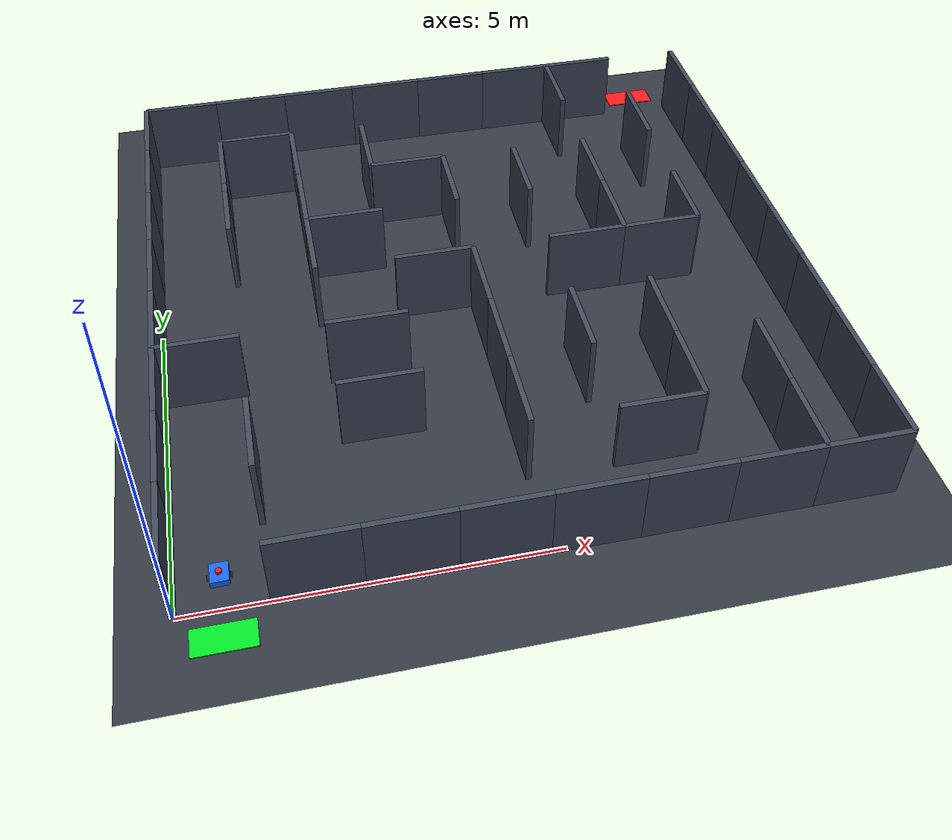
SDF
<?xml version="1.0"?>
<sdf version="1.9">
  <world name="maze">
    <physics name="default_physics" type="ode">
      <max_step_size>0.001</max_step_size>
      <real_time_factor>1.0</real_time_factor>
      <real_time_update_rate>1000</real_time_update_rate>
    </physics>

    <plugin filename="gz-sim-physics-system" name="gz::sim::systems::Physics"/>
    <plugin filename="gz-sim-user-commands-system" name="gz::sim::systems::UserCommands"/>
    <plugin filename="gz-sim-scene-broadcaster-system" name="gz::sim::systems::SceneBroadcaster"/>
    <plugin filename="gz-sim-sensors-system" name="gz::sim::systems::Sensors">
      <render_engine>ogre2</render_engine>
    </plugin>

    <scene>
      <ambient>0.3 0.3 0.35 1</ambient>
      <background>0.05 0.06 0.1 1</background>
      <grid>false</grid>
      <shadows>true</shadows>
    </scene>

    <light type="directional" name="sun">
      <cast_shadows>true</cast_shadows>
      <pose>0 0 15 0 0 0</pose>
      <diffuse>0.95 0.95 1.0 1</diffuse>
      <specular>0.3 0.3 0.4 1</specular>
      <direction>-0.4 0.5 -1</direction>
      <attenuation>
        <range>50</range>
        <constant>0.9</constant>
        <linear>0.01</linear>
        <quadratic>0.001</quadratic>
      </attenuation>
    </light>

    <light type="point" name="goal_glow">
      <pose>9.0 10.0 1.5 0 0 0</pose>
      <diffuse>1.0 0.2 0.2 1</diffuse>
      <specular>0.8 0.1 0.1 1</specular>
      <attenuation>
        <range>5</range>
        <constant>0.4</constant>
        <linear>0.5</linear>
        <quadratic>0.2</quadratic>
      </attenuation>
    </light>

    <model name="ground">
      <static>true</static>
      <link name="link">
        <collision name="c"><geometry><plane><normal>0 0 1</normal><size>13.6 13.6</size></plane></geometry></collision>
        <visual name="v">
          <geometry><plane><normal>0 0 1</normal><size>13.6 13.6</size></plane></geometry>
          <material>
            <ambient>0.12 0.13 0.16 1</ambient>
            <diffuse>0.2 0.22 0.26 1</diffuse>
            <specular>0.1 0.1 0.12 1</specular>
          </material>
        </visual>
      </link>
    </model>

    <model name="start_marker">
      <static>true</static>
      <link name="link">
        <visual name="v">
          <geometry><box><size>0.84 0.4 0.01</size></box></geometry>
          <material>
            <ambient>0.0 0.6 0.1 1</ambient>
            <diffuse>0.0 0.9 0.15 1</diffuse>
            <emissive>0.0 0.4 0.05 1</emissive>
          </material>
        </visual>
      </link>
      <pose>0.6 -0.4 0.005 0 0 0</pose>
    </model>
    <model name="goal_marker">
      <static>true</static>
      <link name="link">
        <visual name="v">
          <geometry><box><size>0.84 0.4 0.01</size></box></geometry>
          <material>
            <ambient>0.7 0.05 0.05 1</ambient>
            <diffuse>1.0 0.1 0.1 1</diffuse>
            <emissive>0.5 0.0 0.0 1</emissive>
          </material>
        </visual>
      </link>
      <pose>9.0 10.0 0.005 0 0 0</pose>
    </model>

    <model name="wall_0">
      <static>true</static>
      <link name="link">
        <collision name="c">
          <geometry><box><size>1.2 0.08 1.2</size></box></geometry>
        </collision>
        <visual name="v">
          <geometry><box><size>1.2 0.08 1.2</size></box></geometry>
          <material>
            <ambient>0.15 0.15 0.2 1</ambient>
            <diffuse>0.25 0.28 0.35 1</diffuse>
            <specular>0.4 0.4 0.5 1</specular>
            <emissive>0.02 0.02 0.04 1</emissive>
          </material>
        </visual>
      </link>
      <pose>6.6 4.8 0.6 0 0 0</pose>
    </model>
    <model name="wall_1">
      <static>true</static>
      <link name="link">
        <collision name="c">
          <geometry><box><size>0.08 1.2 1.2</size></box></geometry>
        </collision>
        <visual name="v">
          <geometry><box><size>0.08 1.2 1.2</size></box></geometry>
          <material>
            <ambient>0.15 0.15 0.2 1</ambient>
            <diffuse>0.25 0.28 0.35 1</diffuse>
            <specular>0.4 0.4 0.5 1</specular>
            <emissive>0.02 0.02 0.04 1</emissive>
          </material>
        </visual>
      </link>
      <pose>4.8 1.7999999999999998 0.6 0 0 0</pose>
    </model>
    <model name="wall_2">
      <static>true</static>
      <link name="link">
        <collision name="c">
          <geometry><box><size>1.2 0.08 1.2</size></box></geometry>
        </collision>
        <visual name="v">
          <geometry><box><size>1.2 0.08 1.2</size></box></geometry>
          <material>
            <ambient>0.15 0.15 0.2 1</ambient>
            <diffuse>0.25 0.28 0.35 1</diffuse>
            <specular>0.4 0.4 0.5 1</specular>
            <emissive>0.02 0.02 0.04 1</emissive>
          </material>
        </visual>
      </link>
      <pose>0.6 3.5999999999999996 0.6 0 0 0</pose>
    </model>
    <model name="wall_3">
      <static>true</static>
      <link name="link">
        <collision name="c">
          <geometry><box><size>1.2 0.08 1.2</size></box></geometry>
        </collision>
        <visual name="v">
          <geometry><box><size>1.2 0.08 1.2</size></box></geometry>
          <material>
            <ambient>0.15 0.15 0.2 1</ambient>
            <diffuse>0.25 0.28 0.35 1</diffuse>
            <specular>0.4 0.4 0.5 1</specular>
            <emissive>0.02 0.02 0.04 1</emissive>
          </material>
        </visual>
      </link>
      <pose>3.0 6.0 0.6 0 0 0</pose>
    </model>
    <model name="wall_4">
      <static>true</static>
      <link name="link">
        <collision name="c">
          <geometry><box><size>0.08 1.2 1.2</size></box></geometry>
        </collision>
        <visual name="v">
          <geometry><box><size>0.08 1.2 1.2</size></box></geometry>
          <material>
            <ambient>0.15 0.15 0.2 1</ambient>
            <diffuse>0.25 0.28 0.35 1</diffuse>
            <specular>0.4 0.4 0.5 1</specular>
            <emissive>0.02 0.02 0.04 1</emissive>
          </material>
        </visual>
      </link>
      <pose>7.199999999999999 1.7999999999999998 0.6 0 0 0</pose>
    </model>
    <model name="wall_5">
      <static>true</static>
      <link name="link">
        <collision name="c">
          <geometry><box><size>0.08 1.2 1.2</size></box></geometry>
        </collision>
        <visual name="v">
          <geometry><box><size>0.08 1.2 1.2</size></box></geometry>
          <material>
            <ambient>0.15 0.15 0.2 1</ambient>
            <diffuse>0.25 0.28 0.35 1</diffuse>
            <specular>0.4 0.4 0.5 1</specular>
            <emissive>0.02 0.02 0.04 1</emissive>
          </material>
        </visual>
      </link>
      <pose>7.2 5.3999999999999995 0.6 0 0 0</pose>
    </model>
    <model name="wall_6">
      <static>true</static>
      <link name="link">
        <collision name="c">
          <geometry><box><size>0.08 1.2 1.2</size></box></geometry>
        </collision>
        <visual name="v">
          <geometry><box><size>0.08 1.2 1.2</size></box></geometry>
          <material>
            <ambient>0.15 0.15 0.2 1</ambient>
            <diffuse>0.25 0.28 0.35 1</diffuse>
            <specular>0.4 0.4 0.5 1</specular>
            <emissive>0.02 0.02 0.04 1</emissive>
          </material>
        </visual>
      </link>
      <pose>7.199999999999999 5.3999999999999995 0.6 0 0 0</pose>
    </model>
    <model name="wall_7">
      <static>true</static>
      <link name="link">
        <collision name="c">
          <geometry><box><size>0.08 1.2 1.2</size></box></geometry>
        </collision>
        <visual name="v">
          <geometry><box><size>0.08 1.2 1.2</size></box></geometry>
          <material>
            <ambient>0.15 0.15 0.2 1</ambient>
            <diffuse>0.25 0.28 0.35 1</diffuse>
            <specular>0.4 0.4 0.5 1</specular>
            <emissive>0.02 0.02 0.04 1</emissive>
          </material>
        </visual>
      </link>
      <pose>8.399999999999999 0.6 0.6 0 0 0</pose>
    </model>
    <model name="wall_8">
      <static>true</static>
      <link name="link">
        <collision name="c">
          <geometry><box><size>0.08 1.2 1.2</size></box></geometry>
        </collision>
        <visual name="v">
          <geometry><box><size>0.08 1.2 1.2</size></box></geometry>
          <material>
            <ambient>0.15 0.15 0.2 1</ambient>
            <diffuse>0.25 0.28 0.35 1</diffuse>
            <specular>0.4 0.4 0.5 1</specular>
            <emissive>0.02 0.02 0.04 1</emissive>
          </material>
        </visual>
      </link>
      <pose>7.2 3.0 0.6 0 0 0</pose>
    </model>
    <model name="wall_9">
      <static>true</static>
      <link name="link">
        <collision name="c">
          <geometry><box><size>0.08 1.2 1.2</size></box></geometry>
        </collision>
        <visual name="v">
          <geometry><box><size>0.08 1.2 1.2</size></box></geometry>
          <material>
            <ambient>0.15 0.15 0.2 1</ambient>
            <diffuse>0.25 0.28 0.35 1</diffuse>
            <specular>0.4 0.4 0.5 1</specular>
            <emissive>0.02 0.02 0.04 1</emissive>
          </material>
        </visual>
      </link>
      <pose>8.4 1.7999999999999998 0.6 0 0 0</pose>
    </model>
    <model name="wall_10">
      <static>true</static>
      <link name="link">
        <collision name="c">
          <geometry><box><size>0.08 1.2 1.2</size></box></geometry>
        </collision>
        <visual name="v">
          <geometry><box><size>0.08 1.2 1.2</size></box></geometry>
          <material>
            <ambient>0.15 0.15 0.2 1</ambient>
            <diffuse>0.25 0.28 0.35 1</diffuse>
            <specular>0.4 0.4 0.5 1</specular>
            <emissive>0.02 0.02 0.04 1</emissive>
          </material>
        </visual>
      </link>
      <pose>6.0 6.6 0.6 0 0 0</pose>
    </model>
    <model name="wall_11">
      <static>true</static>
      <link name="link">
        <collision name="c">
          <geometry><box><size>0.08 1.2 1.2</size></box></geometry>
        </collision>
        <visual name="v">
          <geometry><box><size>0.08 1.2 1.2</size></box></geometry>
          <material>
            <ambient>0.15 0.15 0.2 1</ambient>
            <diffuse>0.25 0.28 0.35 1</diffuse>
            <specular>0.4 0.4 0.5 1</specular>
            <emissive>0.02 0.02 0.04 1</emissive>
          </material>
        </visual>
      </link>
      <pose>0.0 7.799999999999999 0.6 0 0 0</pose>
    </model>
    <model name="wall_12">
      <static>true</static>
      <link name="link">
        <collision name="c">
          <geometry><box><size>1.2 0.08 1.2</size></box></geometry>
        </collision>
        <visual name="v">
          <geometry><box><size>1.2 0.08 1.2</size></box></geometry>
          <material>
            <ambient>0.15 0.15 0.2 1</ambient>
            <diffuse>0.25 0.28 0.35 1</diffuse>
            <specular>0.4 0.4 0.5 1</specular>
            <emissive>0.02 0.02 0.04 1</emissive>
          </material>
        </visual>
      </link>
      <pose>3.0 3.5999999999999996 0.6 0 0 0</pose>
    </model>
    <model name="wall_13">
      <static>true</static>
      <link name="link">
        <collision name="c">
          <geometry><box><size>1.2 0.08 1.2</size></box></geometry>
        </collision>
        <visual name="v">
          <geometry><box><size>1.2 0.08 1.2</size></box></geometry>
          <material>
            <ambient>0.15 0.15 0.2 1</ambient>
            <diffuse>0.25 0.28 0.35 1</diffuse>
            <specular>0.4 0.4 0.5 1</specular>
            <emissive>0.02 0.02 0.04 1</emissive>
          </material>
        </visual>
      </link>
      <pose>1.7999999999999998 8.399999999999999 0.6 0 0 0</pose>
    </model>
    <model name="wall_14">
      <static>true</static>
      <link name="link">
        <collision name="c">
          <geometry><box><size>0.08 1.2 1.2</size></box></geometry>
        </collision>
        <visual name="v">
          <geometry><box><size>0.08 1.2 1.2</size></box></geometry>
          <material>
            <ambient>0.15 0.15 0.2 1</ambient>
            <diffuse>0.25 0.28 0.35 1</diffuse>
            <specular>0.4 0.4 0.5 1</specular>
            <emissive>0.02 0.02 0.04 1</emissive>
          </material>
        </visual>
      </link>
      <pose>0.0 1.7999999999999998 0.6 0 0 0</pose>
    </model>
    <model name="wall_15">
      <static>true</static>
      <link name="link">
        <collision name="c">
          <geometry><box><size>1.2 0.08 1.2</size></box></geometry>
        </collision>
        <visual name="v">
          <geometry><box><size>1.2 0.08 1.2</size></box></geometry>
          <material>
            <ambient>0.15 0.15 0.2 1</ambient>
            <diffuse>0.25 0.28 0.35 1</diffuse>
            <specular>0.4 0.4 0.5 1</specular>
            <emissive>0.02 0.02 0.04 1</emissive>
          </material>
        </visual>
      </link>
      <pose>4.199999999999999 7.199999999999999 0.6 0 0 0</pose>
    </model>
    <model name="wall_16">
      <static>true</static>
      <link name="link">
        <collision name="c">
          <geometry><box><size>0.08 1.2 1.2</size></box></geometry>
        </collision>
        <visual name="v">
          <geometry><box><size>0.08 1.2 1.2</size></box></geometry>
          <material>
            <ambient>0.15 0.15 0.2 1</ambient>
            <diffuse>0.25 0.28 0.35 1</diffuse>
            <specular>0.4 0.4 0.5 1</specular>
            <emissive>0.02 0.02 0.04 1</emissive>
          </material>
        </visual>
      </link>
      <pose>7.2 9.0 0.6 0 0 0</pose>
    </model>
    <model name="wall_17">
      <static>true</static>
      <link name="link">
        <collision name="c">
          <geometry><box><size>1.2 0.08 1.2</size></box></geometry>
        </collision>
        <visual name="v">
          <geometry><box><size>1.2 0.08 1.2</size></box></geometry>
          <material>
            <ambient>0.15 0.15 0.2 1</ambient>
            <diffuse>0.25 0.28 0.35 1</diffuse>
            <specular>0.4 0.4 0.5 1</specular>
            <emissive>0.02 0.02 0.04 1</emissive>
          </material>
        </visual>
      </link>
      <pose>6.6 9.6 0.6 0 0 0</pose>
    </model>
    <model name="wall_18">
      <static>true</static>
      <link name="link">
        <collision name="c">
          <geometry><box><size>0.08 1.2 1.2</size></box></geometry>
        </collision>
        <visual name="v">
          <geometry><box><size>0.08 1.2 1.2</size></box></geometry>
          <material>
            <ambient>0.15 0.15 0.2 1</ambient>
            <diffuse>0.25 0.28 0.35 1</diffuse>
            <specular>0.4 0.4 0.5 1</specular>
            <emissive>0.02 0.02 0.04 1</emissive>
          </material>
        </visual>
      </link>
      <pose>7.199999999999999 3.0 0.6 0 0 0</pose>
    </model>
    <model name="wall_19">
      <static>true</static>
      <link name="link">
        <collision name="c">
          <geometry><box><size>1.2 0.08 1.2</size></box></geometry>
        </collision>
        <visual name="v">
          <geometry><box><size>1.2 0.08 1.2</size></box></geometry>
          <material>
            <ambient>0.15 0.15 0.2 1</ambient>
            <diffuse>0.25 0.28 0.35 1</diffuse>
            <specular>0.4 0.4 0.5 1</specular>
            <emissive>0.02 0.02 0.04 1</emissive>
          </material>
        </visual>
      </link>
      <pose>3.0 9.6 0.6 0 0 0</pose>
    </model>
    <model name="wall_20">
      <static>true</static>
      <link name="link">
        <collision name="c">
          <geometry><box><size>1.2 0.08 1.2</size></box></geometry>
        </collision>
        <visual name="v">
          <geometry><box><size>1.2 0.08 1.2</size></box></geometry>
          <material>
            <ambient>0.15 0.15 0.2 1</ambient>
            <diffuse>0.25 0.28 0.35 1</diffuse>
            <specular>0.4 0.4 0.5 1</specular>
            <emissive>0.02 0.02 0.04 1</emissive>
          </material>
        </visual>
      </link>
      <pose>5.3999999999999995 0.0 0.6 0 0 0</pose>
    </model>
    <model name="wall_21">
      <static>true</static>
      <link name="link">
        <collision name="c">
          <geometry><box><size>0.08 1.2 1.2</size></box></geometry>
        </collision>
        <visual name="v">
          <geometry><box><size>0.08 1.2 1.2</size></box></geometry>
          <material>
            <ambient>0.15 0.15 0.2 1</ambient>
            <diffuse>0.25 0.28 0.35 1</diffuse>
            <specular>0.4 0.4 0.5 1</specular>
            <emissive>0.02 0.02 0.04 1</emissive>
          </material>
        </visual>
      </link>
      <pose>4.8 3.0 0.6 0 0 0</pose>
    </model>
    <model name="wall_22">
      <static>true</static>
      <link name="link">
        <collision name="c">
          <geometry><box><size>1.2 0.08 1.2</size></box></geometry>
        </collision>
        <visual name="v">
          <geometry><box><size>1.2 0.08 1.2</size></box></geometry>
          <material>
            <ambient>0.15 0.15 0.2 1</ambient>
            <diffuse>0.25 0.28 0.35 1</diffuse>
            <specular>0.4 0.4 0.5 1</specular>
            <emissive>0.02 0.02 0.04 1</emissive>
          </material>
        </visual>
      </link>
      <pose>9.0 0.0 0.6 0 0 0</pose>
    </model>
    <model name="wall_23">
      <static>true</static>
      <link name="link">
        <collision name="c">
          <geometry><box><size>0.08 1.2 1.2</size></box></geometry>
        </collision>
        <visual name="v">
          <geometry><box><size>0.08 1.2 1.2</size></box></geometry>
          <material>
            <ambient>0.15 0.15 0.2 1</ambient>
            <diffuse>0.25 0.28 0.35 1</diffuse>
            <specular>0.4 0.4 0.5 1</specular>
            <emissive>0.02 0.02 0.04 1</emissive>
          </material>
        </visual>
      </link>
      <pose>7.199999999999999 9.0 0.6 0 0 0</pose>
    </model>
    <model name="wall_24">
      <static>true</static>
      <link name="link">
        <collision name="c">
          <geometry><box><size>0.08 1.2 1.2</size></box></geometry>
        </collision>
        <visual name="v">
          <geometry><box><size>0.08 1.2 1.2</size></box></geometry>
          <material>
            <ambient>0.15 0.15 0.2 1</ambient>
            <diffuse>0.25 0.28 0.35 1</diffuse>
            <specular>0.4 0.4 0.5 1</specular>
            <emissive>0.02 0.02 0.04 1</emissive>
          </material>
        </visual>
      </link>
      <pose>8.399999999999999 1.7999999999999998 0.6 0 0 0</pose>
    </model>
    <model name="wall_25">
      <static>true</static>
      <link name="link">
        <collision name="c">
          <geometry><box><size>0.08 1.2 1.2</size></box></geometry>
        </collision>
        <visual name="v">
          <geometry><box><size>0.08 1.2 1.2</size></box></geometry>
          <material>
            <ambient>0.15 0.15 0.2 1</ambient>
            <diffuse>0.25 0.28 0.35 1</diffuse>
            <specular>0.4 0.4 0.5 1</specular>
            <emissive>0.02 0.02 0.04 1</emissive>
          </material>
        </visual>
      </link>
      <pose>0.0 5.3999999999999995 0.6 0 0 0</pose>
    </model>
    <model name="wall_26">
      <static>true</static>
      <link name="link">
        <collision name="c">
          <geometry><box><size>0.08 1.2 1.2</size></box></geometry>
        </collision>
        <visual name="v">
          <geometry><box><size>0.08 1.2 1.2</size></box></geometry>
          <material>
            <ambient>0.15 0.15 0.2 1</ambient>
            <diffuse>0.25 0.28 0.35 1</diffuse>
            <specular>0.4 0.4 0.5 1</specular>
            <emissive>0.02 0.02 0.04 1</emissive>
          </material>
        </visual>
      </link>
      <pose>0.0 4.199999999999999 0.6 0 0 0</pose>
    </model>
    <model name="wall_27">
      <static>true</static>
      <link name="link">
        <collision name="c">
          <geometry><box><size>0.08 1.2 1.2</size></box></geometry>
        </collision>
        <visual name="v">
          <geometry><box><size>0.08 1.2 1.2</size></box></geometry>
          <material>
            <ambient>0.15 0.15 0.2 1</ambient>
            <diffuse>0.25 0.28 0.35 1</diffuse>
            <specular>0.4 0.4 0.5 1</specular>
            <emissive>0.02 0.02 0.04 1</emissive>
          </material>
        </visual>
      </link>
      <pose>2.4 6.6 0.6 0 0 0</pose>
    </model>
    <model name="wall_28">
      <static>true</static>
      <link name="link">
        <collision name="c">
          <geometry><box><size>1.2 0.08 1.2</size></box></geometry>
        </collision>
        <visual name="v">
          <geometry><box><size>1.2 0.08 1.2</size></box></geometry>
          <material>
            <ambient>0.15 0.15 0.2 1</ambient>
            <diffuse>0.25 0.28 0.35 1</diffuse>
            <specular>0.4 0.4 0.5 1</specular>
            <emissive>0.02 0.02 0.04 1</emissive>
          </material>
        </visual>
      </link>
      <pose>1.7999999999999998 9.6 0.6 0 0 0</pose>
    </model>
    <model name="wall_29">
      <static>true</static>
      <link name="link">
        <collision name="c">
          <geometry><box><size>1.2 0.08 1.2</size></box></geometry>
        </collision>
        <visual name="v">
          <geometry><box><size>1.2 0.08 1.2</size></box></geometry>
          <material>
            <ambient>0.15 0.15 0.2 1</ambient>
            <diffuse>0.25 0.28 0.35 1</diffuse>
            <specular>0.4 0.4 0.5 1</specular>
            <emissive>0.02 0.02 0.04 1</emissive>
          </material>
        </visual>
      </link>
      <pose>4.199999999999999 4.8 0.6 0 0 0</pose>
    </model>
    <model name="wall_30">
      <static>true</static>
      <link name="link">
        <collision name="c">
          <geometry><box><size>0.08 1.2 1.2</size></box></geometry>
        </collision>
        <visual name="v">
          <geometry><box><size>0.08 1.2 1.2</size></box></geometry>
          <material>
            <ambient>0.15 0.15 0.2 1</ambient>
            <diffuse>0.25 0.28 0.35 1</diffuse>
            <specular>0.4 0.4 0.5 1</specular>
            <emissive>0.02 0.02 0.04 1</emissive>
          </material>
        </visual>
      </link>
      <pose>9.6 3.0 0.6 0 0 0</pose>
    </model>
    <model name="wall_31">
      <static>true</static>
      <link name="link">
        <collision name="c">
          <geometry><box><size>0.08 1.2 1.2</size></box></geometry>
        </collision>
        <visual name="v">
          <geometry><box><size>0.08 1.2 1.2</size></box></geometry>
          <material>
            <ambient>0.15 0.15 0.2 1</ambient>
            <diffuse>0.25 0.28 0.35 1</diffuse>
            <specular>0.4 0.4 0.5 1</specular>
            <emissive>0.02 0.02 0.04 1</emissive>
          </material>
        </visual>
      </link>
      <pose>7.2 6.6 0.6 0 0 0</pose>
    </model>
    <model name="wall_32">
      <static>true</static>
      <link name="link">
        <collision name="c">
          <geometry><box><size>0.08 1.2 1.2</size></box></geometry>
        </collision>
        <visual name="v">
          <geometry><box><size>0.08 1.2 1.2</size></box></geometry>
          <material>
            <ambient>0.15 0.15 0.2 1</ambient>
            <diffuse>0.25 0.28 0.35 1</diffuse>
            <specular>0.4 0.4 0.5 1</specular>
            <emissive>0.02 0.02 0.04 1</emissive>
          </material>
        </visual>
      </link>
      <pose>9.6 7.799999999999999 0.6 0 0 0</pose>
    </model>
    <model name="wall_33">
      <static>true</static>
      <link name="link">
        <collision name="c">
          <geometry><box><size>0.08 1.2 1.2</size></box></geometry>
        </collision>
        <visual name="v">
          <geometry><box><size>0.08 1.2 1.2</size></box></geometry>
          <material>
            <ambient>0.15 0.15 0.2 1</ambient>
            <diffuse>0.25 0.28 0.35 1</diffuse>
            <specular>0.4 0.4 0.5 1</specular>
            <emissive>0.02 0.02 0.04 1</emissive>
          </material>
        </visual>
      </link>
      <pose>0.0 9.0 0.6 0 0 0</pose>
    </model>
    <model name="wall_34">
      <static>true</static>
      <link name="link">
        <collision name="c">
          <geometry><box><size>0.08 1.2 1.2</size></box></geometry>
        </collision>
        <visual name="v">
          <geometry><box><size>0.08 1.2 1.2</size></box></geometry>
          <material>
            <ambient>0.15 0.15 0.2 1</ambient>
            <diffuse>0.25 0.28 0.35 1</diffuse>
            <specular>0.4 0.4 0.5 1</specular>
            <emissive>0.02 0.02 0.04 1</emissive>
          </material>
        </visual>
      </link>
      <pose>8.4 5.3999999999999995 0.6 0 0 0</pose>
    </model>
    <model name="wall_35">
      <static>true</static>
      <link name="link">
        <collision name="c">
          <geometry><box><size>0.08 1.2 1.2</size></box></geometry>
        </collision>
        <visual name="v">
          <geometry><box><size>0.08 1.2 1.2</size></box></geometry>
          <material>
            <ambient>0.15 0.15 0.2 1</ambient>
            <diffuse>0.25 0.28 0.35 1</diffuse>
            <specular>0.4 0.4 0.5 1</specular>
            <emissive>0.02 0.02 0.04 1</emissive>
          </material>
        </visual>
      </link>
      <pose>7.199999999999999 6.6 0.6 0 0 0</pose>
    </model>
    <model name="wall_36">
      <static>true</static>
      <link name="link">
        <collision name="c">
          <geometry><box><size>0.08 1.2 1.2</size></box></geometry>
        </collision>
        <visual name="v">
          <geometry><box><size>0.08 1.2 1.2</size></box></geometry>
          <material>
            <ambient>0.15 0.15 0.2 1</ambient>
            <diffuse>0.25 0.28 0.35 1</diffuse>
            <specular>0.4 0.4 0.5 1</specular>
            <emissive>0.02 0.02 0.04 1</emissive>
          </material>
        </visual>
      </link>
      <pose>3.5999999999999996 7.799999999999999 0.6 0 0 0</pose>
    </model>
    <model name="wall_37">
      <static>true</static>
      <link name="link">
        <collision name="c">
          <geometry><box><size>1.2 0.08 1.2</size></box></geometry>
        </collision>
        <visual name="v">
          <geometry><box><size>1.2 0.08 1.2</size></box></geometry>
          <material>
            <ambient>0.15 0.15 0.2 1</ambient>
            <diffuse>0.25 0.28 0.35 1</diffuse>
            <specular>0.4 0.4 0.5 1</specular>
            <emissive>0.02 0.02 0.04 1</emissive>
          </material>
        </visual>
      </link>
      <pose>4.199999999999999 0.0 0.6 0 0 0</pose>
    </model>
    <model name="wall_38">
      <static>true</static>
      <link name="link">
        <collision name="c">
          <geometry><box><size>0.08 1.2 1.2</size></box></geometry>
        </collision>
        <visual name="v">
          <geometry><box><size>0.08 1.2 1.2</size></box></geometry>
          <material>
            <ambient>0.15 0.15 0.2 1</ambient>
            <diffuse>0.25 0.28 0.35 1</diffuse>
            <specular>0.4 0.4 0.5 1</specular>
            <emissive>0.02 0.02 0.04 1</emissive>
          </material>
        </visual>
      </link>
      <pose>0.0 6.6 0.6 0 0 0</pose>
    </model>
    <model name="wall_39">
      <static>true</static>
      <link name="link">
        <collision name="c">
          <geometry><box><size>0.08 1.2 1.2</size></box></geometry>
        </collision>
        <visual name="v">
          <geometry><box><size>0.08 1.2 1.2</size></box></geometry>
          <material>
            <ambient>0.15 0.15 0.2 1</ambient>
            <diffuse>0.25 0.28 0.35 1</diffuse>
            <specular>0.4 0.4 0.5 1</specular>
            <emissive>0.02 0.02 0.04 1</emissive>
          </material>
        </visual>
      </link>
      <pose>8.4 0.6 0.6 0 0 0</pose>
    </model>
    <model name="wall_40">
      <static>true</static>
      <link name="link">
        <collision name="c">
          <geometry><box><size>1.2 0.08 1.2</size></box></geometry>
        </collision>
        <visual name="v">
          <geometry><box><size>1.2 0.08 1.2</size></box></geometry>
          <material>
            <ambient>0.15 0.15 0.2 1</ambient>
            <diffuse>0.25 0.28 0.35 1</diffuse>
            <specular>0.4 0.4 0.5 1</specular>
            <emissive>0.02 0.02 0.04 1</emissive>
          </material>
        </visual>
      </link>
      <pose>1.7999999999999998 0.0 0.6 0 0 0</pose>
    </model>
    <model name="wall_41">
      <static>true</static>
      <link name="link">
        <collision name="c">
          <geometry><box><size>1.2 0.08 1.2</size></box></geometry>
        </collision>
        <visual name="v">
          <geometry><box><size>1.2 0.08 1.2</size></box></geometry>
          <material>
            <ambient>0.15 0.15 0.2 1</ambient>
            <diffuse>0.25 0.28 0.35 1</diffuse>
            <specular>0.4 0.4 0.5 1</specular>
            <emissive>0.02 0.02 0.04 1</emissive>
          </material>
        </visual>
      </link>
      <pose>5.3999999999999995 9.6 0.6 0 0 0</pose>
    </model>
    <model name="wall_42">
      <static>true</static>
      <link name="link">
        <collision name="c">
          <geometry><box><size>1.2 0.08 1.2</size></box></geometry>
        </collision>
        <visual name="v">
          <geometry><box><size>1.2 0.08 1.2</size></box></geometry>
          <material>
            <ambient>0.15 0.15 0.2 1</ambient>
            <diffuse>0.25 0.28 0.35 1</diffuse>
            <specular>0.4 0.4 0.5 1</specular>
            <emissive>0.02 0.02 0.04 1</emissive>
          </material>
        </visual>
      </link>
      <pose>7.799999999999999 0.0 0.6 0 0 0</pose>
    </model>
    <model name="wall_43">
      <static>true</static>
      <link name="link">
        <collision name="c">
          <geometry><box><size>1.2 0.08 1.2</size></box></geometry>
        </collision>
        <visual name="v">
          <geometry><box><size>1.2 0.08 1.2</size></box></geometry>
          <material>
            <ambient>0.15 0.15 0.2 1</ambient>
            <diffuse>0.25 0.28 0.35 1</diffuse>
            <specular>0.4 0.4 0.5 1</specular>
            <emissive>0.02 0.02 0.04 1</emissive>
          </material>
        </visual>
      </link>
      <pose>6.6 0.0 0.6 0 0 0</pose>
    </model>
    <model name="wall_44">
      <static>true</static>
      <link name="link">
        <collision name="c">
          <geometry><box><size>1.2 0.08 1.2</size></box></geometry>
        </collision>
        <visual name="v">
          <geometry><box><size>1.2 0.08 1.2</size></box></geometry>
          <material>
            <ambient>0.15 0.15 0.2 1</ambient>
            <diffuse>0.25 0.28 0.35 1</diffuse>
            <specular>0.4 0.4 0.5 1</specular>
            <emissive>0.02 0.02 0.04 1</emissive>
          </material>
        </visual>
      </link>
      <pose>7.799999999999999 9.6 0.6 0 0 0</pose>
    </model>
    <model name="wall_45">
      <static>true</static>
      <link name="link">
        <collision name="c">
          <geometry><box><size>1.2 0.08 1.2</size></box></geometry>
        </collision>
        <visual name="v">
          <geometry><box><size>1.2 0.08 1.2</size></box></geometry>
          <material>
            <ambient>0.15 0.15 0.2 1</ambient>
            <diffuse>0.25 0.28 0.35 1</diffuse>
            <specular>0.4 0.4 0.5 1</specular>
            <emissive>0.02 0.02 0.04 1</emissive>
          </material>
        </visual>
      </link>
      <pose>0.6 9.6 0.6 0 0 0</pose>
    </model>
    <model name="wall_46">
      <static>true</static>
      <link name="link">
        <collision name="c">
          <geometry><box><size>0.08 1.2 1.2</size></box></geometry>
        </collision>
        <visual name="v">
          <geometry><box><size>0.08 1.2 1.2</size></box></geometry>
          <material>
            <ambient>0.15 0.15 0.2 1</ambient>
            <diffuse>0.25 0.28 0.35 1</diffuse>
            <specular>0.4 0.4 0.5 1</specular>
            <emissive>0.02 0.02 0.04 1</emissive>
          </material>
        </visual>
      </link>
      <pose>6.0 3.0 0.6 0 0 0</pose>
    </model>
    <model name="wall_47">
      <static>true</static>
      <link name="link">
        <collision name="c">
          <geometry><box><size>0.08 1.2 1.2</size></box></geometry>
        </collision>
        <visual name="v">
          <geometry><box><size>0.08 1.2 1.2</size></box></geometry>
          <material>
            <ambient>0.15 0.15 0.2 1</ambient>
            <diffuse>0.25 0.28 0.35 1</diffuse>
            <specular>0.4 0.4 0.5 1</specular>
            <emissive>0.02 0.02 0.04 1</emissive>
          </material>
        </visual>
      </link>
      <pose>8.399999999999999 5.3999999999999995 0.6 0 0 0</pose>
    </model>
    <model name="wall_48">
      <static>true</static>
      <link name="link">
        <collision name="c">
          <geometry><box><size>0.08 1.2 1.2</size></box></geometry>
        </collision>
        <visual name="v">
          <geometry><box><size>0.08 1.2 1.2</size></box></geometry>
          <material>
            <ambient>0.15 0.15 0.2 1</ambient>
            <diffuse>0.25 0.28 0.35 1</diffuse>
            <specular>0.4 0.4 0.5 1</specular>
            <emissive>0.02 0.02 0.04 1</emissive>
          </material>
        </visual>
      </link>
      <pose>9.6 0.6 0.6 0 0 0</pose>
    </model>
    <model name="wall_49">
      <static>true</static>
      <link name="link">
        <collision name="c">
          <geometry><box><size>0.08 1.2 1.2</size></box></geometry>
        </collision>
        <visual name="v">
          <geometry><box><size>0.08 1.2 1.2</size></box></geometry>
          <material>
            <ambient>0.15 0.15 0.2 1</ambient>
            <diffuse>0.25 0.28 0.35 1</diffuse>
            <specular>0.4 0.4 0.5 1</specular>
            <emissive>0.02 0.02 0.04 1</emissive>
          </material>
        </visual>
      </link>
      <pose>8.399999999999999 7.799999999999999 0.6 0 0 0</pose>
    </model>
    <model name="wall_50">
      <static>true</static>
      <link name="link">
        <collision name="c">
          <geometry><box><size>0.08 1.2 1.2</size></box></geometry>
        </collision>
        <visual name="v">
          <geometry><box><size>0.08 1.2 1.2</size></box></geometry>
          <material>
            <ambient>0.15 0.15 0.2 1</ambient>
            <diffuse>0.25 0.28 0.35 1</diffuse>
            <specular>0.4 0.4 0.5 1</specular>
            <emissive>0.02 0.02 0.04 1</emissive>
          </material>
        </visual>
      </link>
      <pose>0.0 3.0 0.6 0 0 0</pose>
    </model>
    <model name="wall_51">
      <static>true</static>
      <link name="link">
        <collision name="c">
          <geometry><box><size>0.08 1.2 1.2</size></box></geometry>
        </collision>
        <visual name="v">
          <geometry><box><size>0.08 1.2 1.2</size></box></geometry>
          <material>
            <ambient>0.15 0.15 0.2 1</ambient>
            <diffuse>0.25 0.28 0.35 1</diffuse>
            <specular>0.4 0.4 0.5 1</specular>
            <emissive>0.02 0.02 0.04 1</emissive>
          </material>
        </visual>
      </link>
      <pose>2.4 7.799999999999999 0.6 0 0 0</pose>
    </model>
    <model name="wall_52">
      <static>true</static>
      <link name="link">
        <collision name="c">
          <geometry><box><size>0.08 1.2 1.2</size></box></geometry>
        </collision>
        <visual name="v">
          <geometry><box><size>0.08 1.2 1.2</size></box></geometry>
          <material>
            <ambient>0.15 0.15 0.2 1</ambient>
            <diffuse>0.25 0.28 0.35 1</diffuse>
            <specular>0.4 0.4 0.5 1</specular>
            <emissive>0.02 0.02 0.04 1</emissive>
          </material>
        </visual>
      </link>
      <pose>9.6 5.3999999999999995 0.6 0 0 0</pose>
    </model>
    <model name="wall_53">
      <static>true</static>
      <link name="link">
        <collision name="c">
          <geometry><box><size>1.2 0.08 1.2</size></box></geometry>
        </collision>
        <visual name="v">
          <geometry><box><size>1.2 0.08 1.2</size></box></geometry>
          <material>
            <ambient>0.15 0.15 0.2 1</ambient>
            <diffuse>0.25 0.28 0.35 1</diffuse>
            <specular>0.4 0.4 0.5 1</specular>
            <emissive>0.02 0.02 0.04 1</emissive>
          </material>
        </visual>
      </link>
      <pose>6.6 1.2 0.6 0 0 0</pose>
    </model>
    <model name="wall_54">
      <static>true</static>
      <link name="link">
        <collision name="c">
          <geometry><box><size>0.08 1.2 1.2</size></box></geometry>
        </collision>
        <visual name="v">
          <geometry><box><size>0.08 1.2 1.2</size></box></geometry>
          <material>
            <ambient>0.15 0.15 0.2 1</ambient>
            <diffuse>0.25 0.28 0.35 1</diffuse>
            <specular>0.4 0.4 0.5 1</specular>
            <emissive>0.02 0.02 0.04 1</emissive>
          </material>
        </visual>
      </link>
      <pose>9.6 6.6 0.6 0 0 0</pose>
    </model>
    <model name="wall_55">
      <static>true</static>
      <link name="link">
        <collision name="c">
          <geometry><box><size>0.08 1.2 1.2</size></box></geometry>
        </collision>
        <visual name="v">
          <geometry><box><size>0.08 1.2 1.2</size></box></geometry>
          <material>
            <ambient>0.15 0.15 0.2 1</ambient>
            <diffuse>0.25 0.28 0.35 1</diffuse>
            <specular>0.4 0.4 0.5 1</specular>
            <emissive>0.02 0.02 0.04 1</emissive>
          </material>
        </visual>
      </link>
      <pose>9.6 1.7999999999999998 0.6 0 0 0</pose>
    </model>
    <model name="wall_56">
      <static>true</static>
      <link name="link">
        <collision name="c">
          <geometry><box><size>1.2 0.08 1.2</size></box></geometry>
        </collision>
        <visual name="v">
          <geometry><box><size>1.2 0.08 1.2</size></box></geometry>
          <material>
            <ambient>0.15 0.15 0.2 1</ambient>
            <diffuse>0.25 0.28 0.35 1</diffuse>
            <specular>0.4 0.4 0.5 1</specular>
            <emissive>0.02 0.02 0.04 1</emissive>
          </material>
        </visual>
      </link>
      <pose>3.0 2.4 0.6 0 0 0</pose>
    </model>
    <model name="wall_57">
      <static>true</static>
      <link name="link">
        <collision name="c">
          <geometry><box><size>0.08 1.2 1.2</size></box></geometry>
        </collision>
        <visual name="v">
          <geometry><box><size>0.08 1.2 1.2</size></box></geometry>
          <material>
            <ambient>0.15 0.15 0.2 1</ambient>
            <diffuse>0.25 0.28 0.35 1</diffuse>
            <specular>0.4 0.4 0.5 1</specular>
            <emissive>0.02 0.02 0.04 1</emissive>
          </material>
        </visual>
      </link>
      <pose>8.4 7.799999999999999 0.6 0 0 0</pose>
    </model>
    <model name="wall_58">
      <static>true</static>
      <link name="link">
        <collision name="c">
          <geometry><box><size>0.08 1.2 1.2</size></box></geometry>
        </collision>
        <visual name="v">
          <geometry><box><size>0.08 1.2 1.2</size></box></geometry>
          <material>
            <ambient>0.15 0.15 0.2 1</ambient>
            <diffuse>0.25 0.28 0.35 1</diffuse>
            <specular>0.4 0.4 0.5 1</specular>
            <emissive>0.02 0.02 0.04 1</emissive>
          </material>
        </visual>
      </link>
      <pose>4.8 4.199999999999999 0.6 0 0 0</pose>
    </model>
    <model name="wall_59">
      <static>true</static>
      <link name="link">
        <collision name="c">
          <geometry><box><size>1.2 0.08 1.2</size></box></geometry>
        </collision>
        <visual name="v">
          <geometry><box><size>1.2 0.08 1.2</size></box></geometry>
          <material>
            <ambient>0.15 0.15 0.2 1</ambient>
            <diffuse>0.25 0.28 0.35 1</diffuse>
            <specular>0.4 0.4 0.5 1</specular>
            <emissive>0.02 0.02 0.04 1</emissive>
          </material>
        </visual>
      </link>
      <pose>7.799999999999999 4.8 0.6 0 0 0</pose>
    </model>
    <model name="wall_60">
      <static>true</static>
      <link name="link">
        <collision name="c">
          <geometry><box><size>1.2 0.08 1.2</size></box></geometry>
        </collision>
        <visual name="v">
          <geometry><box><size>1.2 0.08 1.2</size></box></geometry>
          <material>
            <ambient>0.15 0.15 0.2 1</ambient>
            <diffuse>0.25 0.28 0.35 1</diffuse>
            <specular>0.4 0.4 0.5 1</specular>
            <emissive>0.02 0.02 0.04 1</emissive>
          </material>
        </visual>
      </link>
      <pose>3.0 0.0 0.6 0 0 0</pose>
    </model>
    <model name="wall_61">
      <static>true</static>
      <link name="link">
        <collision name="c">
          <geometry><box><size>1.2 0.08 1.2</size></box></geometry>
        </collision>
        <visual name="v">
          <geometry><box><size>1.2 0.08 1.2</size></box></geometry>
          <material>
            <ambient>0.15 0.15 0.2 1</ambient>
            <diffuse>0.25 0.28 0.35 1</diffuse>
            <specular>0.4 0.4 0.5 1</specular>
            <emissive>0.02 0.02 0.04 1</emissive>
          </material>
        </visual>
      </link>
      <pose>1.7999999999999998 8.4 0.6 0 0 0</pose>
    </model>
    <model name="wall_62">
      <static>true</static>
      <link name="link">
        <collision name="c">
          <geometry><box><size>0.08 1.2 1.2</size></box></geometry>
        </collision>
        <visual name="v">
          <geometry><box><size>0.08 1.2 1.2</size></box></geometry>
          <material>
            <ambient>0.15 0.15 0.2 1</ambient>
            <diffuse>0.25 0.28 0.35 1</diffuse>
            <specular>0.4 0.4 0.5 1</specular>
            <emissive>0.02 0.02 0.04 1</emissive>
          </material>
        </visual>
      </link>
      <pose>1.2 6.6 0.6 0 0 0</pose>
    </model>
    <model name="wall_63">
      <static>true</static>
      <link name="link">
        <collision name="c">
          <geometry><box><size>0.08 1.2 1.2</size></box></geometry>
        </collision>
        <visual name="v">
          <geometry><box><size>0.08 1.2 1.2</size></box></geometry>
          <material>
            <ambient>0.15 0.15 0.2 1</ambient>
            <diffuse>0.25 0.28 0.35 1</diffuse>
            <specular>0.4 0.4 0.5 1</specular>
            <emissive>0.02 0.02 0.04 1</emissive>
          </material>
        </visual>
      </link>
      <pose>1.2 7.799999999999999 0.6 0 0 0</pose>
    </model>
    <model name="wall_64">
      <static>true</static>
      <link name="link">
        <collision name="c">
          <geometry><box><size>1.2 0.08 1.2</size></box></geometry>
        </collision>
        <visual name="v">
          <geometry><box><size>1.2 0.08 1.2</size></box></geometry>
          <material>
            <ambient>0.15 0.15 0.2 1</ambient>
            <diffuse>0.25 0.28 0.35 1</diffuse>
            <specular>0.4 0.4 0.5 1</specular>
            <emissive>0.02 0.02 0.04 1</emissive>
          </material>
        </visual>
      </link>
      <pose>4.199999999999999 7.2 0.6 0 0 0</pose>
    </model>
    <model name="wall_65">
      <static>true</static>
      <link name="link">
        <collision name="c">
          <geometry><box><size>0.08 1.2 1.2</size></box></geometry>
        </collision>
        <visual name="v">
          <geometry><box><size>0.08 1.2 1.2</size></box></geometry>
          <material>
            <ambient>0.15 0.15 0.2 1</ambient>
            <diffuse>0.25 0.28 0.35 1</diffuse>
            <specular>0.4 0.4 0.5 1</specular>
            <emissive>0.02 0.02 0.04 1</emissive>
          </material>
        </visual>
      </link>
      <pose>9.6 4.199999999999999 0.6 0 0 0</pose>
    </model>
    <model name="wall_66">
      <static>true</static>
      <link name="link">
        <collision name="c">
          <geometry><box><size>0.08 1.2 1.2</size></box></geometry>
        </collision>
        <visual name="v">
          <geometry><box><size>0.08 1.2 1.2</size></box></geometry>
          <material>
            <ambient>0.15 0.15 0.2 1</ambient>
            <diffuse>0.25 0.28 0.35 1</diffuse>
            <specular>0.4 0.4 0.5 1</specular>
            <emissive>0.02 0.02 0.04 1</emissive>
          </material>
        </visual>
      </link>
      <pose>1.2 1.7999999999999998 0.6 0 0 0</pose>
    </model>
    <model name="wall_67">
      <static>true</static>
      <link name="link">
        <collision name="c">
          <geometry><box><size>0.08 1.2 1.2</size></box></geometry>
        </collision>
        <visual name="v">
          <geometry><box><size>0.08 1.2 1.2</size></box></geometry>
          <material>
            <ambient>0.15 0.15 0.2 1</ambient>
            <diffuse>0.25 0.28 0.35 1</diffuse>
            <specular>0.4 0.4 0.5 1</specular>
            <emissive>0.02 0.02 0.04 1</emissive>
          </material>
        </visual>
      </link>
      <pose>7.2 1.7999999999999998 0.6 0 0 0</pose>
    </model>
    <model name="wall_68">
      <static>true</static>
      <link name="link">
        <collision name="c">
          <geometry><box><size>0.08 1.2 1.2</size></box></geometry>
        </collision>
        <visual name="v">
          <geometry><box><size>0.08 1.2 1.2</size></box></geometry>
          <material>
            <ambient>0.15 0.15 0.2 1</ambient>
            <diffuse>0.25 0.28 0.35 1</diffuse>
            <specular>0.4 0.4 0.5 1</specular>
            <emissive>0.02 0.02 0.04 1</emissive>
          </material>
        </visual>
      </link>
      <pose>0.0 0.6 0.6 0 0 0</pose>
    </model>
    <model name="wall_69">
      <static>true</static>
      <link name="link">
        <collision name="c">
          <geometry><box><size>0.08 1.2 1.2</size></box></geometry>
        </collision>
        <visual name="v">
          <geometry><box><size>0.08 1.2 1.2</size></box></geometry>
          <material>
            <ambient>0.15 0.15 0.2 1</ambient>
            <diffuse>0.25 0.28 0.35 1</diffuse>
            <specular>0.4 0.4 0.5 1</specular>
            <emissive>0.02 0.02 0.04 1</emissive>
          </material>
        </visual>
      </link>
      <pose>2.4 5.3999999999999995 0.6 0 0 0</pose>
    </model>
    <model name="wall_70">
      <static>true</static>
      <link name="link">
        <collision name="c">
          <geometry><box><size>0.08 1.2 1.2</size></box></geometry>
        </collision>
        <visual name="v">
          <geometry><box><size>0.08 1.2 1.2</size></box></geometry>
          <material>
            <ambient>0.15 0.15 0.2 1</ambient>
            <diffuse>0.25 0.28 0.35 1</diffuse>
            <specular>0.4 0.4 0.5 1</specular>
            <emissive>0.02 0.02 0.04 1</emissive>
          </material>
        </visual>
      </link>
      <pose>9.6 9.0 0.6 0 0 0</pose>
    </model>
    <model name="wall_71">
      <static>true</static>
      <link name="link">
        <collision name="c">
          <geometry><box><size>0.08 1.2 1.2</size></box></geometry>
        </collision>
        <visual name="v">
          <geometry><box><size>0.08 1.2 1.2</size></box></geometry>
          <material>
            <ambient>0.15 0.15 0.2 1</ambient>
            <diffuse>0.25 0.28 0.35 1</diffuse>
            <specular>0.4 0.4 0.5 1</specular>
            <emissive>0.02 0.02 0.04 1</emissive>
          </material>
        </visual>
      </link>
      <pose>4.8 6.6 0.6 0 0 0</pose>
    </model>
    <model name="wall_72">
      <static>true</static>
      <link name="link">
        <collision name="c">
          <geometry><box><size>1.2 0.08 1.2</size></box></geometry>
        </collision>
        <visual name="v">
          <geometry><box><size>1.2 0.08 1.2</size></box></geometry>
          <material>
            <ambient>0.15 0.15 0.2 1</ambient>
            <diffuse>0.25 0.28 0.35 1</diffuse>
            <specular>0.4 0.4 0.5 1</specular>
            <emissive>0.02 0.02 0.04 1</emissive>
          </material>
        </visual>
      </link>
      <pose>4.199999999999999 9.6 0.6 0 0 0</pose>
    </model>

    <model name="maze_bot">
      <pose>0.6 0.5 0.05 0 0 1.5708</pose>

      <link name="base_link">
        <inertial>
          <mass>2.0</mass>
          <inertia><ixx>0.02</ixx><iyy>0.025</iyy><izz>0.03</izz><ixy>0</ixy><ixz>0</ixz><iyz>0</iyz></inertia>
        </inertial>
        <collision name="c"><geometry><box><size>0.30 0.25 0.10</size></box></geometry></collision>
        <visual name="v">
          <geometry><box><size>0.30 0.25 0.10</size></box></geometry>
          <material>
            <ambient>0.05 0.2 0.5 1</ambient>
            <diffuse>0.1 0.4 0.9 1</diffuse>
            <specular>0.2 0.4 0.9 1</specular>
          </material>
        </visual>
      </link>

      <link name="left_wheel">
        <pose>0 0.15 -0.05 0 0 0</pose>
        <inertial>
          <mass>0.2</mass>
          <inertia><ixx>0.0001</ixx><iyy>0.0001</iyy><izz>0.0001</izz><ixy>0</ixy><ixz>0</ixz><iyz>0</iyz></inertia>
        </inertial>
        <collision name="c">
          <pose>0 0 0 1.5708 0 0</pose>
          <geometry><cylinder><radius>0.04</radius><length>0.025</length></cylinder></geometry>
        </collision>
        <visual name="v">
          <pose>0 0 0 1.5708 0 0</pose>
          <geometry><cylinder><radius>0.04</radius><length>0.025</length></cylinder></geometry>
          <material><ambient>0.1 0.1 0.1 1</ambient><diffuse>0.15 0.15 0.15 1</diffuse></material>
        </visual>
      </link>

      <link name="right_wheel">
        <pose>0 -0.15 -0.05 0 0 0</pose>
        <inertial>
          <mass>0.2</mass>
          <inertia><ixx>0.0001</ixx><iyy>0.0001</iyy><izz>0.0001</izz><ixy>0</ixy><ixz>0</ixz><iyz>0</iyz></inertia>
        </inertial>
        <collision name="c">
          <pose>0 0 0 1.5708 0 0</pose>
          <geometry><cylinder><radius>0.04</radius><length>0.025</length></cylinder></geometry>
        </collision>
        <visual name="v">
          <pose>0 0 0 1.5708 0 0</pose>
          <geometry><cylinder><radius>0.04</radius><length>0.025</length></cylinder></geometry>
          <material><ambient>0.1 0.1 0.1 1</ambient><diffuse>0.15 0.15 0.15 1</diffuse></material>
        </visual>
      </link>

      <link name="caster">
        <pose>0.11 0 -0.07 0 0 0</pose>
        <inertial>
          <mass>0.05</mass>
          <inertia><ixx>0.00001</ixx><iyy>0.00001</iyy><izz>0.00001</izz><ixy>0</ixy><ixz>0</ixz><iyz>0</iyz></inertia>
        </inertial>
        <collision name="c"><geometry><sphere><radius>0.02</radius></sphere></geometry>
          <surface><friction><ode><mu>0.0</mu><mu2>0.0</mu2></ode></friction></surface>
        </collision>
        <visual name="v"><geometry><sphere><radius>0.02</radius></sphere></geometry></visual>
      </link>

      <link name="lidar_link">
        <pose>0 0 0.07 0 0 0</pose>
        <inertial>
          <mass>0.1</mass>
          <inertia><ixx>0.0001</ixx><iyy>0.0001</iyy><izz>0.0001</izz><ixy>0</ixy><ixz>0</ixz><iyz>0</iyz></inertia>
        </inertial>
        <visual name="v">
          <geometry><cylinder><radius>0.04</radius><length>0.04</length></cylinder></geometry>
          <material><ambient>0.6 0.05 0.05 1</ambient><diffuse>0.9 0.1 0.1 1</diffuse></material>
        </visual>
        <sensor name="lidar" type="gpu_lidar">
          <update_rate>10</update_rate>
          <topic>scan</topic>
          <gz_frame_id>lidar_link</gz_frame_id>
          <ray>
            <scan>
              <horizontal>
                <samples>360</samples>
                <resolution>1</resolution>
                <min_angle>-3.14159</min_angle>
                <max_angle>3.14159</max_angle>
              </horizontal>
              <vertical><samples>1</samples><min_angle>0</min_angle><max_angle>0</max_angle></vertical>
            </scan>
            <range><min>0.08</min><max>8.0</max><resolution>0.01</resolution></range>
          </ray>
          <always_on>1</always_on>
          <visualize>true</visualize>
        </sensor>
      </link>

      <joint name="left_wheel_joint" type="revolute">
        <parent>base_link</parent><child>left_wheel</child>
        <axis><xyz>0 1 0</xyz><limit><lower>-1e16</lower><upper>1e16</upper></limit></axis>
      </joint>
      <joint name="right_wheel_joint" type="revolute">
        <parent>base_link</parent><child>right_wheel</child>
        <axis><xyz>0 1 0</xyz><limit><lower>-1e16</lower><upper>1e16</upper></limit></axis>
      </joint>
      <joint name="caster_joint" type="fixed">
        <parent>base_link</parent><child>caster</child>
      </joint>
      <joint name="lidar_joint" type="fixed">
        <parent>base_link</parent><child>lidar_link</child>
      </joint>

      <plugin filename="gz-sim-diff-drive-system" name="gz::sim::systems::DiffDrive">
        <left_joint>left_wheel_joint</left_joint>
        <right_joint>right_wheel_joint</right_joint>
        <wheel_separation>0.30</wheel_separation>
        <wheel_radius>0.04</wheel_radius>
        <topic>cmd_vel</topic>
        <odom_topic>odom</odom_topic>
        <frame_id>odom</frame_id>
        <child_frame_id>base_link</child_frame_id>
        <odom_publish_frequency>30</odom_publish_frequency>
        <tf_topic>tf</tf_topic>
      </plugin>

      <plugin filename="gz-sim-joint-state-publisher-system"
              name="gz::sim::systems::JointStatePublisher">
        <topic>joint_states</topic>
      </plugin>

      <plugin filename="gz-sim-pose-publisher-system"
              name="gz::sim::systems::PosePublisher">
        <publish_link_pose>true</publish_link_pose>
        <use_pose_vector_msg>true</use_pose_vector_msg>
        <static_publisher>true</static_publisher>
        <static_update_frequency>10</static_update_frequency>
      </plugin>
    </model>
  </world>
</sdf>
